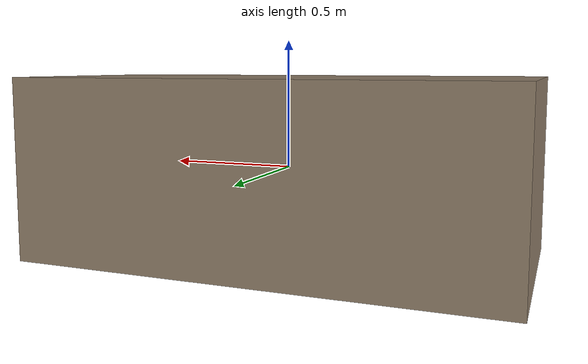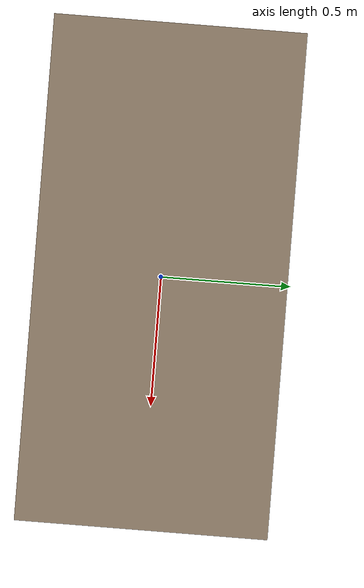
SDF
<?xml version="1.0"?>
<sdf version="1.6">
  <model name="conference_table_small">
    <static>true</static>
    <link name="link">
      <collision name="col">
        <geometry>
          <box>
            <size>1.9 0.95 0.72</size>
          </box>
        </geometry>
      </collision>
      <visual name="vis">
        <geometry>
          <box>
            <size>1.9 0.95 0.72</size>
          </box>
        </geometry>
        <material>
          <ambient>0.55 0.48 0.4 1</ambient>
          <diffuse>0.55 0.48 0.4 1</diffuse>
        </material>
      </visual>
    </link>
  </model>
</sdf>
